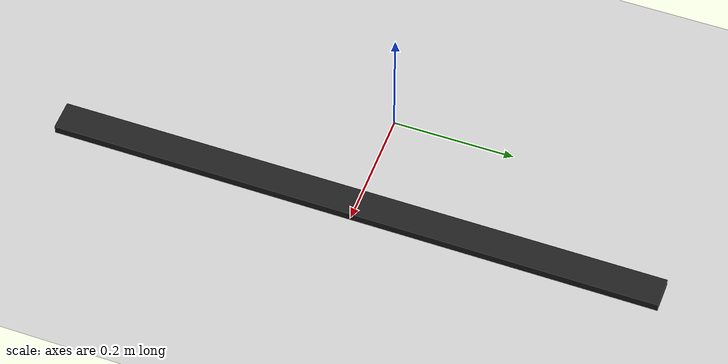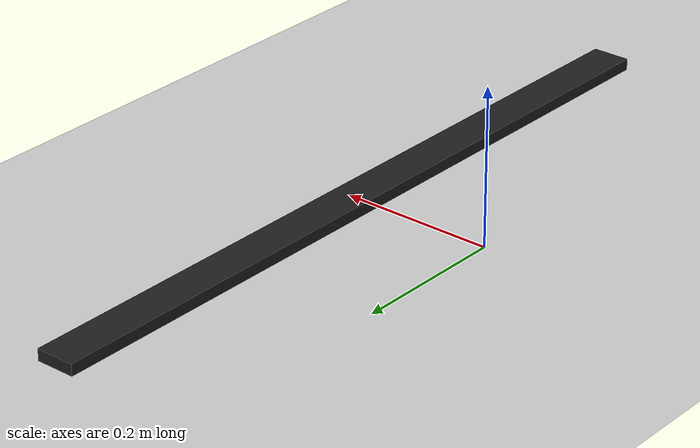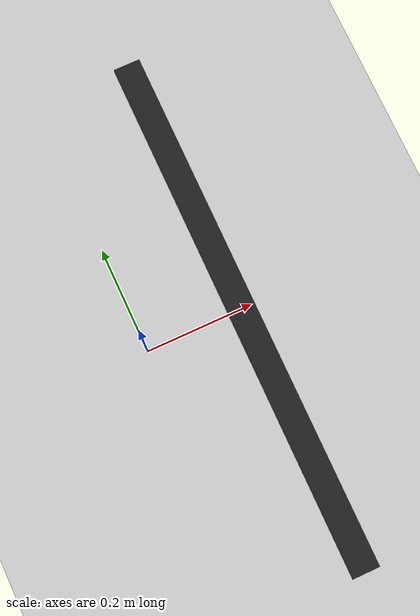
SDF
<?xml version="1.0" ?>
<sdf version="1.4">
  <world name="default">
    <physics type="ode">
      <gravity>0 0 -9.81</gravity>
      <ode>
        <solver>
          <type>quick</type>
          <iters>50</iters>
          <sor>1.4</sor>
        </solver>
        <constraints>
          <cfm>0.0</cfm>
          <erp>0.2</erp>
          <contact_max_correcting_vel>100.0</contact_max_correcting_vel>
          <contact_surface_layer>0.0</contact_surface_layer>
        </constraints>
      </ode>
      <real_time_update_rate>1000</real_time_update_rate>
      <max_step_size>0.001</max_step_size>
    </physics>
    <!-- A global light source -->
    <include>
      <uri>model://sun</uri>
    </include>
    <!-- A ground plane -->
    <include>
      <uri>model://ground_plane</uri>
    </include>
    <!-- A bunch of chairs -->
    <include>
      <uri>model://door_obstacle</uri>
      <pose>0.18 0 0 0 0 1.57</pose>
    </include>
  </world>
</sdf>

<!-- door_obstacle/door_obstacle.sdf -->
<sdf version="1.4">
  <model name="door_obstacle">
    <static>1</static>
    <link name="door_obstacle_link">
      <!-- ramp up -->
      <collision name="door_obstacle_collision">
        <pose>0. 0. 0.0075 0. 0. 0.</pose>
        <geometry>
          <box>
            <size>1. 0.05 0.015</size>
          </box>
        </geometry>
      </collision>
      <visual name="door_obstacle_visual">
        <pose>0. 0. 0.0075 0. 0. 0.</pose>
        <geometry>
          <box>
            <size>1. 0.05 0.015</size>
          </box>
        </geometry>
        <material>
          <script>
            <uri>file://media/materials/scripts/gazebo.material</uri>
            <name>Gazebo/Black</name>
          </script>
        </material>
      </visual>
      <velocity_decay>
        <linear>0.</linear>
        <angular>0.</angular>
      </velocity_decay>
      <self_collide>0</self_collide>
      <kinematic>0</kinematic>
      <gravity>1</gravity>
    </link>
  </model>
</sdf>
